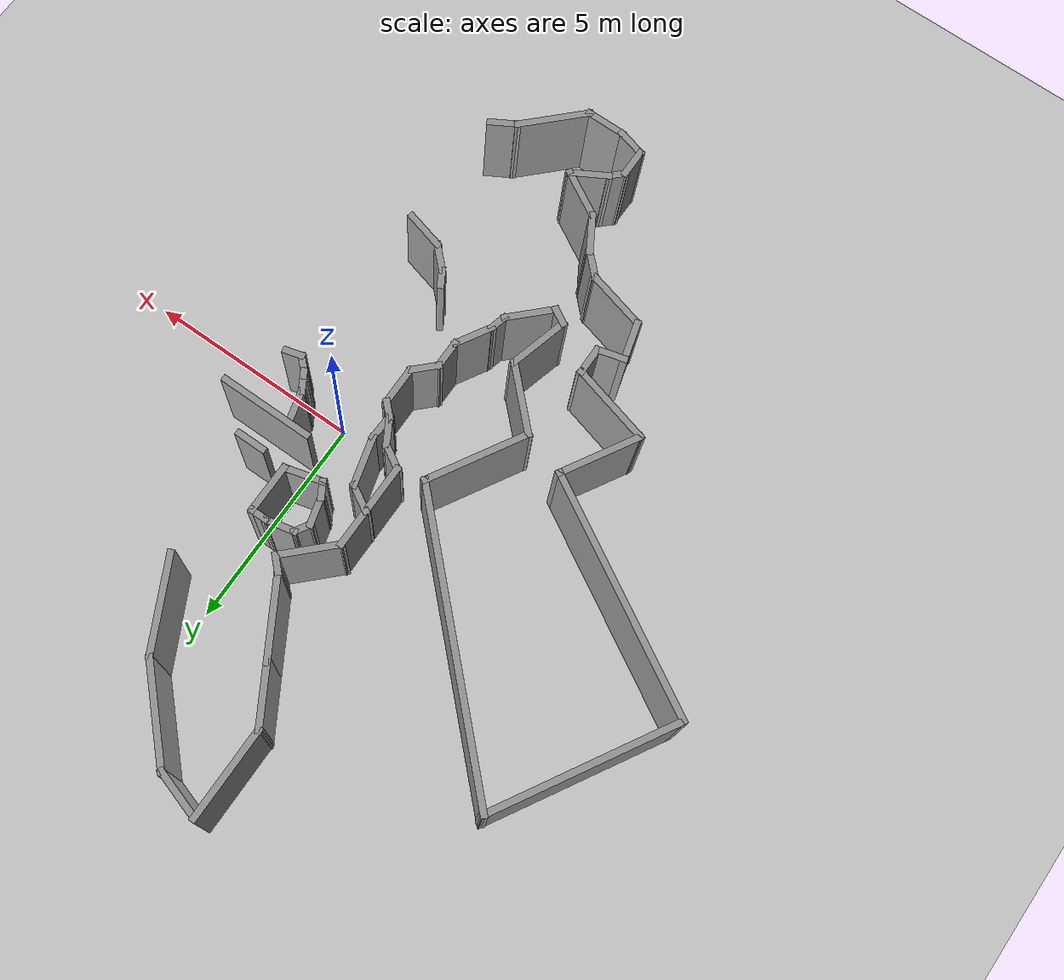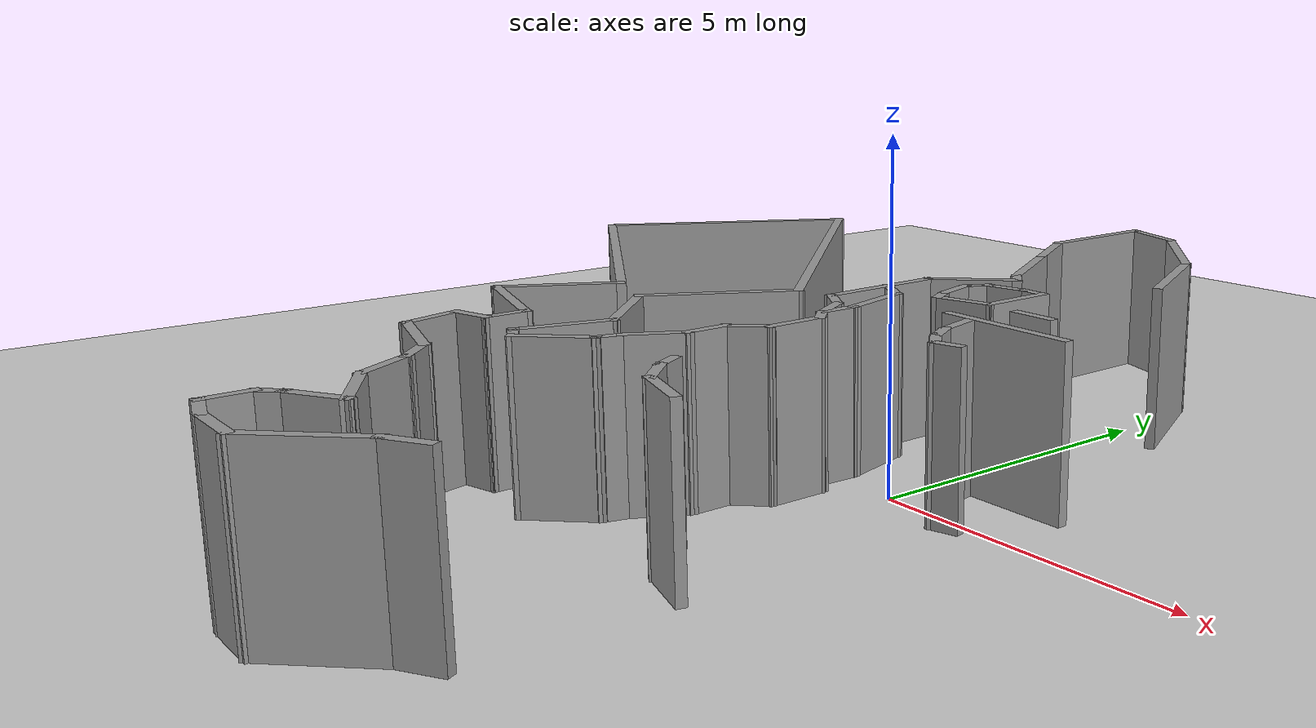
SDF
<sdf version="1.7">
 <world name="default">
  <model name="ground_plane">
   <static>1</static>
   <link name="link">
    <collision name="collision">
     <geometry><plane><normal>0 0 1</normal><size>100 100</size></plane></geometry>
     <surface>
      <contact><collide_bitmask>65535</collide_bitmask></contact>
      <friction><ode><mu>100</mu><mu2>50</mu2></ode></friction>
     </surface>
    </collision>
    <visual name="visual">
     <cast_shadows>0</cast_shadows>
     <geometry><plane><normal>0 0 1</normal><size>100 100</size></plane></geometry>
     <material>
      <script><uri>file://media/materials/scripts/gazebo.material</uri><name>Gazebo/Grey</name></script>
     </material>
    </visual>
   </link>
  </model>
  <model name="pikachu">
   <pose>-0.20309 0.029445 0 0 -0 0</pose>
   <link name="Wall_150">
    <collision name="Wall_150_Collision">
     <geometry><box><size>1.24128 0.15 2.5</size></box></geometry>
     <pose>0 0 1.25 0 -0 0</pose>
    </collision>
    <visual name="Wall_150_Visual">
     <pose>0 0 1.25 0 -0 0</pose>
     <geometry><box><size>1.24128 0.15 2.5</size></box></geometry>
     <material>
      <script><uri>file://media/materials/scripts/gazebo.material</uri><name>Gazebo/Grey</name></script>
      <ambient>1 1 1 1</ambient>
     </material>
     <meta><layer>0</layer></meta>
    </visual>
    <pose>-2.03907 8.34284 0 0 -0 -0.306851</pose>
   </link>
   <link name="Wall_151">
    <collision name="Wall_151_Collision">
     <geometry><box><size>2.4345 0.15 2.5</size></box></geometry>
     <pose>0 0 1.25 0 -0 0</pose>
    </collision>
    <visual name="Wall_151_Visual">
     <pose>0 0 1.25 0 -0 0</pose>
     <geometry><box><size>2.4345 0.15 2.5</size></box></geometry>
     <material>
      <script><uri>file://media/materials/scripts/gazebo.material</uri><name>Gazebo/Grey</name></script>
      <ambient>1 1 1 1</ambient>
     </material>
     <meta><layer>0</layer></meta>
    </visual>
    <pose>-0.729636 7.3595 0 0 -0 -0.808021</pose>
   </link>
   <link name="Wall_152">
    <collision name="Wall_152_Collision">
     <geometry><box><size>2.29967 0.15 2.5</size></box></geometry>
     <pose>0 0 1.25 0 -0 0</pose>
    </collision>
    <visual name="Wall_152_Visual">
     <pose>0 0 1.25 0 -0 0</pose>
     <geometry><box><size>2.29967 0.15 2.5</size></box></geometry>
     <material>
      <script><uri>file://media/materials/scripts/gazebo.material</uri><name>Gazebo/Grey</name></script>
      <ambient>1 1 1 1</ambient>
     </material>
     <meta><layer>0</layer></meta>
    </visual>
    <pose>0.544827 5.5636 0 0 -0 -1.11007</pose>
   </link>
   <link name="Wall_178">
    <collision name="Wall_178_Collision">
     <geometry><box><size>0.75 0.15 2.5</size></box></geometry>
     <pose>0 0 1.25 0 -0 0</pose>
    </collision>
    <visual name="Wall_178_Visual">
     <pose>0 0 1.25 0 -0 0</pose>
     <geometry><box><size>0.75 0.15 2.5</size></box></geometry>
     <material>
      <script><uri>file://media/materials/scripts/gazebo.material</uri><name>Gazebo/Grey</name></script>
      <ambient>1 1 1 1</ambient>
     </material>
     <meta><layer>0</layer></meta>
    </visual>
    <pose>0.984101 -7.21821 0 0 -0 -2.61799</pose>
   </link>
   <link name="Wall_179">
    <collision name="Wall_179_Collision">
     <geometry><box><size>1.75 0.15 2.5</size></box></geometry>
     <pose>0 0 1.25 0 -0 0</pose>
    </collision>
    <visual name="Wall_179_Visual">
     <pose>0 0 1.25 0 -0 0</pose>
     <geometry><box><size>1.75 0.15 2.5</size></box></geometry>
     <material>
      <script><uri>file://media/materials/scripts/gazebo.material</uri><name>Gazebo/Grey</name></script>
      <ambient>1 1 1 1</ambient>
     </material>
     <meta><layer>0</layer></meta>
    </visual>
    <pose>0.158608 -7.93389 0 0 -0 -2.35619</pose>
   </link>
   <link name="Wall_180">
    <collision name="Wall_180_Collision">
     <geometry><box><size>1 0.15 2.5</size></box></geometry>
     <pose>0 0 1.25 0 -0 0</pose>
    </collision>
    <visual name="Wall_180_Visual">
     <pose>0 0 1.25 0 -0 0</pose>
     <geometry><box><size>1 0.15 2.5</size></box></geometry>
     <material>
      <script><uri>file://media/materials/scripts/gazebo.material</uri><name>Gazebo/Grey</name></script>
      <ambient>1 1 1 1</ambient>
     </material>
     <meta><layer>0</layer></meta>
    </visual>
    <pose>-0.832078 -8.49958 0 0 -0 3.14159</pose>
   </link>
   <link name="Wall_181">
    <collision name="Wall_181_Collision">
     <geometry><box><size>0.75 0.15 2.5</size></box></geometry>
     <pose>0 0 1.25 0 -0 0</pose>
    </collision>
    <visual name="Wall_181_Visual">
     <pose>0 0 1.25 0 -0 0</pose>
     <geometry><box><size>0.75 0.15 2.5</size></box></geometry>
     <material>
      <script><uri>file://media/materials/scripts/gazebo.material</uri><name>Gazebo/Grey</name></script>
      <ambient>1 1 1 1</ambient>
     </material>
     <meta><layer>0</layer></meta>
    </visual>
    <pose>-1.54686 -8.42193 0 0 -0 2.87979</pose>
   </link>
   <link name="Wall_182">
    <collision name="Wall_182_Collision">
     <geometry><box><size>0.75 0.15 2.5</size></box></geometry>
     <pose>0 0 1.25 0 -0 0</pose>
    </collision>
    <visual name="Wall_182_Visual">
     <pose>0 0 1.25 0 -0 0</pose>
     <geometry><box><size>0.75 0.15 2.5</size></box></geometry>
     <material>
      <script><uri>file://media/materials/scripts/gazebo.material</uri><name>Gazebo/Grey</name></script>
      <ambient>1 1 1 1</ambient>
     </material>
     <meta><layer>0</layer></meta>
    </visual>
    <pose>-1.83663 -8.04429 0 0 -0 1.5708</pose>
   </link>
   <link name="Wall_183">
    <collision name="Wall_183_Collision">
     <geometry><box><size>0.5 0.15 2.5</size></box></geometry>
     <pose>0 0 1.25 0 -0 0</pose>
    </collision>
    <visual name="Wall_183_Visual">
     <pose>0 0 1.25 0 -0 0</pose>
     <geometry><box><size>0.5 0.15 2.5</size></box></geometry>
     <material>
      <script><uri>file://media/materials/scripts/gazebo.material</uri><name>Gazebo/Grey</name></script>
      <ambient>1 1 1 1</ambient>
     </material>
     <meta><layer>0</layer></meta>
    </visual>
    <pose>-1.71289 -7.62054 0 0 -0 0.785398</pose>
   </link>
   <link name="Wall_184">
    <collision name="Wall_184_Collision">
     <geometry><box><size>1 0.15 2.5</size></box></geometry>
     <pose>0 0 1.25 0 -0 0</pose>
    </collision>
    <visual name="Wall_184_Visual">
     <pose>0 0 1.25 0 -0 0</pose>
     <geometry><box><size>1 0.15 2.5</size></box></geometry>
     <material>
      <script><uri>file://media/materials/scripts/gazebo.material</uri><name>Gazebo/Grey</name></script>
      <ambient>1 1 1 1</ambient>
     </material>
     <meta><layer>0</layer></meta>
    </visual>
    <pose>-1.22108 -7.2843 0 0 -0 0.523599</pose>
   </link>
   <link name="Wall_185">
    <collision name="Wall_185_Collision">
     <geometry><box><size>1.25 0.15 2.5</size></box></geometry>
     <pose>0 0 1.25 0 -0 0</pose>
    </collision>
    <visual name="Wall_185_Visual">
     <pose>0 0 1.25 0 -0 0</pose>
     <geometry><box><size>1.25 0.15 2.5</size></box></geometry>
     <material>
      <script><uri>file://media/materials/scripts/gazebo.material</uri><name>Gazebo/Grey</name></script>
      <ambient>1 1 1 1</ambient>
     </material>
     <meta><layer>0</layer></meta>
    </visual>
    <pose>-1.32934 -6.7968 0 0 -0 2.61799</pose>
   </link>
   <link name="Wall_186">
    <collision name="Wall_186_Collision">
     <geometry><box><size>1 0.15 2.5</size></box></geometry>
     <pose>0 0 1.25 0 -0 0</pose>
    </collision>
    <visual name="Wall_186_Visual">
     <pose>0 0 1.25 0 -0 0</pose>
     <geometry><box><size>1 0.15 2.5</size></box></geometry>
     <material>
      <script><uri>file://media/materials/scripts/gazebo.material</uri><name>Gazebo/Grey</name></script>
      <ambient>1 1 1 1</ambient>
     </material>
     <meta><layer>0</layer></meta>
    </visual>
    <pose>-2.01815 -6.15374 0 0 -0 2.0944</pose>
   </link>
   <link name="Wall_187">
    <collision name="Wall_187_Collision">
     <geometry><box><size>0.75 0.15 2.5</size></box></geometry>
     <pose>0 0 1.25 0 -0 0</pose>
    </collision>
    <visual name="Wall_187_Visual">
     <pose>0 0 1.25 0 -0 0</pose>
     <geometry><box><size>0.75 0.15 2.5</size></box></geometry>
     <material>
      <script><uri>file://media/materials/scripts/gazebo.material</uri><name>Gazebo/Grey</name></script>
      <ambient>1 1 1 1</ambient>
     </material>
     <meta><layer>0</layer></meta>
    </visual>
    <pose>-2.44278 -5.57355 0 0 -0 2.35619</pose>
   </link>
   <link name="Wall_188">
    <collision name="Wall_188_Collision">
     <geometry><box><size>1.5 0.15 2.5</size></box></geometry>
     <pose>0 0 1.25 0 -0 0</pose>
    </collision>
    <visual name="Wall_188_Visual">
     <pose>0 0 1.25 0 -0 0</pose>
     <geometry><box><size>1.5 0.15 2.5</size></box></geometry>
     <material>
      <script><uri>file://media/materials/scripts/gazebo.material</uri><name>Gazebo/Grey</name></script>
      <ambient>1 1 1 1</ambient>
     </material>
     <meta><layer>0</layer></meta>
    </visual>
    <pose>-3.30692 -5.18671 0 0 -0 2.87979</pose>
   </link>
   <link name="Wall_189">
    <collision name="Wall_189_Collision">
     <geometry><box><size>1 0.15 2.5</size></box></geometry>
     <pose>0 0 1.25 0 -0 0</pose>
    </collision>
    <visual name="Wall_189_Visual">
     <pose>0 0 1.25 0 -0 0</pose>
     <geometry><box><size>1 0.15 2.5</size></box></geometry>
     <material>
      <script><uri>file://media/materials/scripts/gazebo.material</uri><name>Gazebo/Grey</name></script>
      <ambient>1 1 1 1</ambient>
     </material>
     <meta><layer>0</layer></meta>
    </visual>
    <pose>-4.06891 -4.60149 0 0 -0 1.8326</pose>
   </link>
   <link name="Wall_190">
    <collision name="Wall_190_Collision">
     <geometry><box><size>0.75 0.15 2.5</size></box></geometry>
     <pose>0 0 1.25 0 -0 0</pose>
    </collision>
    <visual name="Wall_190_Visual">
     <pose>0 0 1.25 0 -0 0</pose>
     <geometry><box><size>0.75 0.15 2.5</size></box></geometry>
     <material>
      <script><uri>file://media/materials/scripts/gazebo.material</uri><name>Gazebo/Grey</name></script>
      <ambient>1 1 1 1</ambient>
     </material>
     <meta><layer>0</layer></meta>
    </visual>
    <pose>-3.88913 -4.11333 0 0 -0 0.261799</pose>
   </link>
   <link name="Wall_191">
    <collision name="Wall_191_Collision">
     <geometry><box><size>0.75 0.15 2.5</size></box></geometry>
     <pose>0 0 1.25 0 -0 0</pose>
    </collision>
    <visual name="Wall_191_Visual">
     <pose>0 0 1.25 0 -0 0</pose>
     <geometry><box><size>0.75 0.15 2.5</size></box></geometry>
     <material>
      <script><uri>file://media/materials/scripts/gazebo.material</uri><name>Gazebo/Grey</name></script>
      <ambient>1 1 1 1</ambient>
     </material>
     <meta><layer>0</layer></meta>
    </visual>
    <pose>-3.59936 -3.73568 0 0 -0 1.5708</pose>
   </link>
   <link name="Wall_192">
    <collision name="Wall_192_Collision">
     <geometry><box><size>2 0.15 2.5</size></box></geometry>
     <pose>0 0 1.25 0 -0 0</pose>
    </collision>
    <visual name="Wall_192_Visual">
     <pose>0 0 1.25 0 -0 0</pose>
     <geometry><box><size>2 0.15 2.5</size></box></geometry>
     <material>
      <script><uri>file://media/materials/scripts/gazebo.material</uri><name>Gazebo/Grey</name></script>
      <ambient>1 1 1 1</ambient>
     </material>
     <meta><layer>0</layer></meta>
    </visual>
    <pose>-4.49284 -3.19627 0 0 -0 2.87979</pose>
   </link>
   <link name="Wall_193">
    <collision name="Wall_193_Collision">
     <geometry><box><size>2 0.15 2.5</size></box></geometry>
     <pose>0 0 1.25 0 -0 0</pose>
    </collision>
    <visual name="Wall_193_Visual">
     <pose>0 0 1.25 0 -0 0</pose>
     <geometry><box><size>2 0.15 2.5</size></box></geometry>
     <material>
      <script><uri>file://media/materials/scripts/gazebo.material</uri><name>Gazebo/Grey</name></script>
      <ambient>1 1 1 1</ambient>
     </material>
     <meta><layer>0</layer></meta>
    </visual>
    <pose>-4.92382 -2.15579 0 0 -0 1.0472</pose>
   </link>
   <link name="Wall_194">
    <collision name="Wall_194_Collision">
     <geometry><box><size>5.75 0.15 2.5</size></box></geometry>
     <pose>0 0 1.25 0 -0 0</pose>
    </collision>
    <visual name="Wall_194_Visual">
     <pose>0 0 1.25 0 -0 0</pose>
     <geometry><box><size>5.75 0.15 2.5</size></box></geometry>
     <material>
      <script><uri>file://media/materials/scripts/gazebo.material</uri><name>Gazebo/Grey</name></script>
      <ambient>1 1 1 1</ambient>
     </material>
     <meta><layer>0</layer></meta>
    </visual>
    <pose>-6.88619 0.045281 0 0 -0 2.61799</pose>
   </link>
   <link name="Wall_195">
    <collision name="Wall_195_Collision">
     <geometry><box><size>4.5 0.15 2.5</size></box></geometry>
     <pose>0 0 1.25 0 -0 0</pose>
    </collision>
    <visual name="Wall_195_Visual">
     <pose>0 0 1.25 0 -0 0</pose>
     <geometry><box><size>4.5 0.15 2.5</size></box></geometry>
     <material>
      <script><uri>file://media/materials/scripts/gazebo.material</uri><name>Gazebo/Grey</name></script>
      <ambient>1 1 1 1</ambient>
     </material>
     <meta><layer>0</layer></meta>
    </visual>
    <pose>-8.22356 3.32889 0 0 -0 1.0472</pose>
   </link>
   <link name="Wall_196">
    <collision name="Wall_196_Collision">
     <geometry><box><size>7 0.15 2.5</size></box></geometry>
     <pose>0 0 1.25 0 -0 0</pose>
    </collision>
    <visual name="Wall_196_Visual">
     <pose>0 0 1.25 0 -0 0</pose>
     <geometry><box><size>7 0.15 2.5</size></box></geometry>
     <material>
      <script><uri>file://media/materials/scripts/gazebo.material</uri><name>Gazebo/Grey</name></script>
      <ambient>1 1 1 1</ambient>
     </material>
     <meta><layer>0</layer></meta>
    </visual>
    <pose>-4.71422 2.79065 0 0 -0 -0.785398</pose>
   </link>
   <link name="Wall_197">
    <collision name="Wall_197_Collision">
     <geometry><box><size>2.5 0.15 2.5</size></box></geometry>
     <pose>0 0 1.25 0 -0 0</pose>
    </collision>
    <visual name="Wall_197_Visual">
     <pose>0 0 1.25 0 -0 0</pose>
     <geometry><box><size>2.5 0.15 2.5</size></box></geometry>
     <material>
      <script><uri>file://media/materials/scripts/gazebo.material</uri><name>Gazebo/Grey</name></script>
      <ambient>1 1 1 1</ambient>
     </material>
     <meta><layer>0</layer></meta>
    </visual>
    <pose>-2.87988 -0.64877 0 0 -0 -2.0944</pose>
   </link>
   <link name="Wall_198">
    <collision name="Wall_198_Collision">
     <geometry><box><size>1.75 0.15 2.5</size></box></geometry>
     <pose>0 0 1.25 0 -0 0</pose>
    </collision>
    <visual name="Wall_198_Visual">
     <pose>0 0 1.25 0 -0 0</pose>
     <geometry><box><size>1.75 0.15 2.5</size></box></geometry>
     <material>
      <script><uri>file://media/materials/scripts/gazebo.material</uri><name>Gazebo/Grey</name></script>
      <ambient>1 1 1 1</ambient>
     </material>
     <meta><layer>0</layer></meta>
    </visual>
    <pose>-2.9017 -2.23204 0 0 -0 -0.785398</pose>
   </link>
   <link name="Wall_199">
    <collision name="Wall_199_Collision">
     <geometry><box><size>1.5 0.15 2.5</size></box></geometry>
     <pose>0 0 1.25 0 -0 0</pose>
    </collision>
    <visual name="Wall_199_Visual">
     <pose>0 0 1.25 0 -0 0</pose>
     <geometry><box><size>1.5 0.15 2.5</size></box></geometry>
     <material>
      <script><uri>file://media/materials/scripts/gazebo.material</uri><name>Gazebo/Grey</name></script>
      <ambient>1 1 1 1</ambient>
     </material>
     <meta><layer>0</layer></meta>
    </visual>
    <pose>-2.51071 -3.44972 0 0 -0 -1.8326</pose>
   </link>
   <link name="Wall_200">
    <collision name="Wall_200_Collision">
     <geometry><box><size>0.5 0.15 2.5</size></box></geometry>
     <pose>0 0 1.25 0 -0 0</pose>
    </collision>
    <visual name="Wall_200_Visual">
     <pose>0 0 1.25 0 -0 0</pose>
     <geometry><box><size>0.5 0.15 2.5</size></box></geometry>
     <material>
      <script><uri>file://media/materials/scripts/gazebo.material</uri><name>Gazebo/Grey</name></script>
      <ambient>1 1 1 1</ambient>
     </material>
     <meta><layer>0</layer></meta>
    </visual>
    <pose>-2.53386 -4.18922 0 0 -0 -0.523599</pose>
   </link>
   <link name="Wall_201">
    <collision name="Wall_201_Collision">
     <geometry><box><size>1.25 0.15 2.5</size></box></geometry>
     <pose>0 0 1.25 0 -0 0</pose>
    </collision>
    <visual name="Wall_201_Visual">
     <pose>0 0 1.25 0 -0 0</pose>
     <geometry><box><size>1.25 0.15 2.5</size></box></geometry>
     <material>
      <script><uri>file://media/materials/scripts/gazebo.material</uri><name>Gazebo/Grey</name></script>
      <ambient>1 1 1 1</ambient>
     </material>
     <meta><layer>0</layer></meta>
    </visual>
    <pose>-1.9934 -3.88781 0 0 -0 0.785398</pose>
   </link>
   <link name="Wall_202">
    <collision name="Wall_202_Collision">
     <geometry><box><size>0.5 0.15 2.5</size></box></geometry>
     <pose>0 0 1.25 0 -0 0</pose>
    </collision>
    <visual name="Wall_202_Visual">
     <pose>0 0 1.25 0 -0 0</pose>
     <geometry><box><size>0.5 0.15 2.5</size></box></geometry>
     <material>
      <script><uri>file://media/materials/scripts/gazebo.material</uri><name>Gazebo/Grey</name></script>
      <ambient>1 1 1 1</ambient>
     </material>
     <meta><layer>0</layer></meta>
    </visual>
    <pose>-1.5592 -3.32987 0 0 -0 1.309</pose>
   </link>
   <link name="Wall_203">
    <collision name="Wall_203_Collision">
     <geometry><box><size>1 0.15 2.5</size></box></geometry>
     <pose>0 0 1.25 0 -0 0</pose>
    </collision>
    <visual name="Wall_203_Visual">
     <pose>0 0 1.25 0 -0 0</pose>
     <geometry><box><size>1 0.15 2.5</size></box></geometry>
     <material>
      <script><uri>file://media/materials/scripts/gazebo.material</uri><name>Gazebo/Grey</name></script>
      <ambient>1 1 1 1</ambient>
     </material>
     <meta><layer>0</layer></meta>
    </visual>
    <pose>-1.3014 -2.79277 0 0 -0 1.0472</pose>
   </link>
   <link name="Wall_204">
    <collision name="Wall_204_Collision">
     <geometry><box><size>0.75 0.15 2.5</size></box></geometry>
     <pose>0 0 1.25 0 -0 0</pose>
    </collision>
    <visual name="Wall_204_Visual">
     <pose>0 0 1.25 0 -0 0</pose>
     <geometry><box><size>0.75 0.15 2.5</size></box></geometry>
     <material>
      <script><uri>file://media/materials/scripts/gazebo.material</uri><name>Gazebo/Grey</name></script>
      <ambient>1 1 1 1</ambient>
     </material>
     <meta><layer>0</layer></meta>
    </visual>
    <pose>-1.0889 -2.12471 0 0 -0 1.5708</pose>
   </link>
   <link name="Wall_205">
    <collision name="Wall_205_Collision">
     <geometry><box><size>0.75 0.15 2.5</size></box></geometry>
     <pose>0 0 1.25 0 -0 0</pose>
    </collision>
    <visual name="Wall_205_Visual">
     <pose>0 0 1.25 0 -0 0</pose>
     <geometry><box><size>0.75 0.15 2.5</size></box></geometry>
     <material>
      <script><uri>file://media/materials/scripts/gazebo.material</uri><name>Gazebo/Grey</name></script>
      <ambient>1 1 1 1</ambient>
     </material>
     <meta><layer>0</layer></meta>
    </visual>
    <pose>-0.87677 -1.61258 0 0 -0 0.785398</pose>
   </link>
   <link name="Wall_206">
    <collision name="Wall_206_Collision">
     <geometry><box><size>1 0.15 2.5</size></box></geometry>
     <pose>0 0 1.25 0 -0 0</pose>
    </collision>
    <visual name="Wall_206_Visual">
     <pose>0 0 1.25 0 -0 0</pose>
     <geometry><box><size>1 0.15 2.5</size></box></geometry>
     <material>
      <script><uri>file://media/materials/scripts/gazebo.material</uri><name>Gazebo/Grey</name></script>
      <ambient>1 1 1 1</ambient>
     </material>
     <meta><layer>0</layer></meta>
    </visual>
    <pose>-0.664638 -0.975443 0 0 -0 1.5708</pose>
   </link>
   <link name="Wall_207">
    <collision name="Wall_207_Collision">
     <geometry><box><size>0.5 0.15 2.5</size></box></geometry>
     <pose>0 0 1.25 0 -0 0</pose>
    </collision>
    <visual name="Wall_207_Visual">
     <pose>0 0 1.25 0 -0 0</pose>
     <geometry><box><size>0.5 0.15 2.5</size></box></geometry>
     <material>
      <script><uri>file://media/materials/scripts/gazebo.material</uri><name>Gazebo/Grey</name></script>
      <ambient>1 1 1 1</ambient>
     </material>
     <meta><layer>0</layer></meta>
    </visual>
    <pose>-0.788382 -0.426699 0 0 -0 2.35619</pose>
   </link>
   <link name="Wall_208">
    <collision name="Wall_208_Collision">
     <geometry><box><size>0.75 0.15 2.5</size></box></geometry>
     <pose>0 0 1.25 0 -0 0</pose>
    </collision>
    <visual name="Wall_208_Visual">
     <pose>0 0 1.25 0 -0 0</pose>
     <geometry><box><size>0.75 0.15 2.5</size></box></geometry>
     <material>
      <script><uri>file://media/materials/scripts/gazebo.material</uri><name>Gazebo/Grey</name></script>
      <ambient>1 1 1 1</ambient>
     </material>
     <meta><layer>0</layer></meta>
    </visual>
    <pose>-1.06212 -0.043148 0 0 -0 2.0944</pose>
   </link>
   <link name="Wall_214">
    <collision name="Wall_214_Collision">
     <geometry><box><size>2.25 0.15 2.5</size></box></geometry>
     <pose>0 0 1.25 0 -0 0</pose>
    </collision>
    <visual name="Wall_214_Visual">
     <pose>0 0 1.25 0 -0 0</pose>
     <geometry><box><size>2.25 0.15 2.5</size></box></geometry>
     <material>
      <script><uri>file://media/materials/scripts/gazebo.material</uri><name>Gazebo/Grey</name></script>
      <ambient>1 1 1 1</ambient>
     </material>
     <meta><layer>0</layer></meta>
    </visual>
    <pose>-2.58621 7.48065 0 0 -0 -1.5708</pose>
   </link>
   <link name="Wall_215">
    <collision name="Wall_215_Collision">
     <geometry><box><size>1.5 0.15 2.5</size></box></geometry>
     <pose>0 0 1.25 0 -0 0</pose>
    </collision>
    <visual name="Wall_215_Visual">
     <pose>0 0 1.25 0 -0 0</pose>
     <geometry><box><size>1.5 0.15 2.5</size></box></geometry>
     <material>
      <script><uri>file://media/materials/scripts/gazebo.material</uri><name>Gazebo/Grey</name></script>
      <ambient>1 1 1 1</ambient>
     </material>
     <meta><layer>0</layer></meta>
    </visual>
    <pose>-2.24871 5.84608 0 0 -0 -1.0472</pose>
   </link>
   <link name="Wall_216">
    <collision name="Wall_216_Collision">
     <geometry><box><size>2 0.15 2.5</size></box></geometry>
     <pose>0 0 1.25 0 -0 0</pose>
    </collision>
    <visual name="Wall_216_Visual">
     <pose>0 0 1.25 0 -0 0</pose>
     <geometry><box><size>2 0.15 2.5</size></box></geometry>
     <material>
      <script><uri>file://media/materials/scripts/gazebo.material</uri><name>Gazebo/Grey</name></script>
      <ambient>1 1 1 1</ambient>
     </material>
     <meta><layer>0</layer></meta>
    </visual>
    <pose>-1.44871 4.46044 0 0 -0 -1.0472</pose>
   </link>
   <link name="Wall_217">
    <collision name="Wall_217_Collision">
     <geometry><box><size>0.5 0.15 2.5</size></box></geometry>
     <pose>0 0 1.25 0 -0 0</pose>
    </collision>
    <visual name="Wall_217_Visual">
     <pose>0 0 1.25 0 -0 0</pose>
     <geometry><box><size>0.5 0.15 2.5</size></box></geometry>
     <material>
      <script><uri>file://media/materials/scripts/gazebo.material</uri><name>Gazebo/Grey</name></script>
      <ambient>1 1 1 1</ambient>
     </material>
     <meta><layer>0</layer></meta>
    </visual>
    <pose>-0.862463 3.53562 0 0 -0 -0.785398</pose>
   </link>
   <link name="Wall_218">
    <collision name="Wall_218_Collision">
     <geometry><box><size>1.5 0.15 2.5</size></box></geometry>
     <pose>0 0 1.25 0 -0 0</pose>
    </collision>
    <visual name="Wall_218_Visual">
     <pose>0 0 1.25 0 -0 0</pose>
     <geometry><box><size>1.5 0.15 2.5</size></box></geometry>
     <material>
      <script><uri>file://media/materials/scripts/gazebo.material</uri><name>Gazebo/Grey</name></script>
      <ambient>1 1 1 1</ambient>
     </material>
     <meta><layer>0</layer></meta>
    </visual>
    <pose>-1.21602 2.93458 0 0 -0 -2.35619</pose>
   </link>
   <link name="Wall_219">
    <collision name="Wall_219_Collision">
     <geometry><box><size>1 0.15 2.5</size></box></geometry>
     <pose>0 0 1.25 0 -0 0</pose>
    </collision>
    <visual name="Wall_219_Visual">
     <pose>0 0 1.25 0 -0 0</pose>
     <geometry><box><size>1 0.15 2.5</size></box></geometry>
     <material>
      <script><uri>file://media/materials/scripts/gazebo.material</uri><name>Gazebo/Grey</name></script>
      <ambient>1 1 1 1</ambient>
     </material>
     <meta><layer>0</layer></meta>
    </visual>
    <pose>-1.69331 2.03228 0 0 -0 -1.5708</pose>
   </link>
   <link name="Wall_220">
    <collision name="Wall_220_Collision">
     <geometry><box><size>1.25 0.15 2.5</size></box></geometry>
     <pose>0 0 1.25 0 -0 0</pose>
    </collision>
    <visual name="Wall_220_Visual">
     <pose>0 0 1.25 0 -0 0</pose>
     <geometry><box><size>1.25 0.15 2.5</size></box></geometry>
     <material>
      <script><uri>file://media/materials/scripts/gazebo.material</uri><name>Gazebo/Grey</name></script>
      <ambient>1 1 1 1</ambient>
     </material>
     <meta><layer>0</layer></meta>
    </visual>
    <pose>-1.69331 1.05728 0 0 -0 -1.5708</pose>
   </link>
   <link name="Wall_221">
    <collision name="Wall_221_Collision">
     <geometry><box><size>0.712143 0.15 2.5</size></box></geometry>
     <pose>0 0 1.25 0 -0 0</pose>
    </collision>
    <visual name="Wall_221_Visual">
     <pose>0 0 1.25 0 -0 0</pose>
     <geometry><box><size>0.712143 0.15 2.5</size></box></geometry>
     <material>
      <script><uri>file://media/materials/scripts/gazebo.material</uri><name>Gazebo/Grey</name></script>
      <ambient>1 1 1 1</ambient>
     </material>
     <meta><layer>0</layer></meta>
    </visual>
    <pose>-1.45272 0.361971 0 0 -0 -0.543334</pose>
   </link>
   <link name="Wall_231">
    <collision name="Wall_231_Collision">
     <geometry><box><size>0.15 0.15 2.5</size></box></geometry>
     <pose>0 0 1.25 0 -0 0</pose>
    </collision>
    <visual name="Wall_231_Visual">
     <pose>0 0 1.25 0 -0 0</pose>
     <geometry><box><size>0.15 0.15 2.5</size></box></geometry>
     <material>
      <script><uri>file://media/materials/scripts/gazebo.material</uri><name>Gazebo/Grey</name></script>
      <ambient>1 1 1 1</ambient>
     </material>
     <meta><layer>0</layer></meta>
    </visual>
    <pose>-0.133514 2.92781 0 0 -0 0</pose>
   </link>
   <link name="Wall_241">
    <collision name="Wall_241_Collision">
     <geometry><box><size>1 0.15 2.5</size></box></geometry>
     <pose>0 0 1.25 0 -0 0</pose>
    </collision>
    <visual name="Wall_241_Visual">
     <pose>0 0 1.25 0 -0 0</pose>
     <geometry><box><size>1 0.15 2.5</size></box></geometry>
     <material>
      <script><uri>file://media/materials/scripts/gazebo.material</uri><name>Gazebo/Grey</name></script>
      <ambient>1 1 1 1</ambient>
     </material>
     <meta><layer>0</layer></meta>
    </visual>
    <pose>0.925849 -4.15225 0 0 -0 2.87979</pose>
   </link>
   <link name="Wall_242">
    <collision name="Wall_242_Collision">
     <geometry><box><size>0.75 0.15 2.5</size></box></geometry>
     <pose>0 0 1.25 0 -0 0</pose>
    </collision>
    <visual name="Wall_242_Visual">
     <pose>0 0 1.25 0 -0 0</pose>
     <geometry><box><size>0.75 0.15 2.5</size></box></geometry>
     <material>
      <script><uri>file://media/materials/scripts/gazebo.material</uri><name>Gazebo/Grey</name></script>
      <ambient>1 1 1 1</ambient>
     </material>
     <meta><layer>0</layer></meta>
    </visual>
    <pose>0.303198 -3.83012 0 0 -0 2.35619</pose>
   </link>
   <link name="Wall_243">
    <collision name="Wall_243_Collision">
     <geometry><box><size>0.5 0.15 2.5</size></box></geometry>
     <pose>0 0 1.25 0 -0 0</pose>
    </collision>
    <visual name="Wall_243_Visual">
     <pose>0 0 1.25 0 -0 0</pose>
     <geometry><box><size>0.5 0.15 2.5</size></box></geometry>
     <material>
      <script><uri>file://media/materials/scripts/gazebo.material</uri><name>Gazebo/Grey</name></script>
      <ambient>1 1 1 1</ambient>
     </material>
     <meta><layer>0</layer></meta>
    </visual>
    <pose>0.003566 -3.46643 0 0 -0 2.0944</pose>
   </link>
   <link name="Wall_255">
    <collision name="Wall_255_Collision">
     <geometry><box><size>0.5 0.15 2.5</size></box></geometry>
     <pose>0 0 1.25 0 -0 0</pose>
    </collision>
    <visual name="Wall_255_Visual">
     <pose>0 0 1.25 0 -0 0</pose>
     <geometry><box><size>0.5 0.15 2.5</size></box></geometry>
     <material>
      <script><uri>file://media/materials/scripts/gazebo.material</uri><name>Gazebo/Grey</name></script>
      <ambient>1 1 1 1</ambient>
     </material>
     <meta><layer>0</layer></meta>
    </visual>
    <pose>0.041486 2.92781 0 0 -0 0</pose>
   </link>
   <link name="Wall_256">
    <collision name="Wall_256_Collision">
     <geometry><box><size>1.25 0.15 2.5</size></box></geometry>
     <pose>0 0 1.25 0 -0 0</pose>
    </collision>
    <visual name="Wall_256_Visual">
     <pose>0 0 1.25 0 -0 0</pose>
     <geometry><box><size>1.25 0.15 2.5</size></box></geometry>
     <material>
      <script><uri>file://media/materials/scripts/gazebo.material</uri><name>Gazebo/Grey</name></script>
      <ambient>1 1 1 1</ambient>
     </material>
     <meta><layer>0</layer></meta>
    </visual>
    <pose>0.216486 2.37781 0 0 -0 -1.5708</pose>
   </link>
   <link name="Wall_257">
    <collision name="Wall_257_Collision">
     <geometry><box><size>1 0.15 2.5</size></box></geometry>
     <pose>0 0 1.25 0 -0 0</pose>
    </collision>
    <visual name="Wall_257_Visual">
     <pose>0 0 1.25 0 -0 0</pose>
     <geometry><box><size>1 0.15 2.5</size></box></geometry>
     <material>
      <script><uri>file://media/materials/scripts/gazebo.material</uri><name>Gazebo/Grey</name></script>
      <ambient>1 1 1 1</ambient>
     </material>
     <meta><layer>0</layer></meta>
    </visual>
    <pose>-0.194033 1.71781 0 0 -0 -2.87979</pose>
   </link>
   <link name="Wall_258">
    <collision name="Wall_258_Collision">
     <geometry><box><size>0.5 0.15 2.5</size></box></geometry>
     <pose>0 0 1.25 0 -0 0</pose>
    </collision>
    <visual name="Wall_258_Visual">
     <pose>0 0 1.25 0 -0 0</pose>
     <geometry><box><size>0.5 0.15 2.5</size></box></geometry>
     <material>
      <script><uri>file://media/materials/scripts/gazebo.material</uri><name>Gazebo/Grey</name></script>
      <ambient>1 1 1 1</ambient>
     </material>
     <meta><layer>0</layer></meta>
    </visual>
    <pose>-0.692051 1.75937 0 0 -0 2.0944</pose>
   </link>
   <link name="Wall_259">
    <collision name="Wall_259_Collision">
     <geometry><box><size>0.75 0.15 2.5</size></box></geometry>
     <pose>0 0 1.25 0 -0 0</pose>
    </collision>
    <visual name="Wall_259_Visual">
     <pose>0 0 1.25 0 -0 0</pose>
     <geometry><box><size>0.75 0.15 2.5</size></box></geometry>
     <material>
      <script><uri>file://media/materials/scripts/gazebo.material</uri><name>Gazebo/Grey</name></script>
      <ambient>1 1 1 1</ambient>
     </material>
     <meta><layer>0</layer></meta>
    </visual>
    <pose>-0.857197 2.2007 0 0 -0 1.8326</pose>
   </link>
   <link name="Wall_260">
    <collision name="Wall_260_Collision">
     <geometry><box><size>0.5 0.15 2.5</size></box></geometry>
     <pose>0 0 1.25 0 -0 0</pose>
    </collision>
    <visual name="Wall_260_Visual">
     <pose>0 0 1.25 0 -0 0</pose>
     <geometry><box><size>0.5 0.15 2.5</size></box></geometry>
     <material>
      <script><uri>file://media/materials/scripts/gazebo.material</uri><name>Gazebo/Grey</name></script>
      <ambient>1 1 1 1</ambient>
     </material>
     <meta><layer>0</layer></meta>
    </visual>
    <pose>-0.847343 2.64203 0 0 -0 1.0472</pose>
   </link>
   <link name="Wall_261">
    <collision name="Wall_261_Collision">
     <geometry><box><size>0.790549 0.15 2.5</size></box></geometry>
     <pose>0 0 1.25 0 -0 0</pose>
    </collision>
    <visual name="Wall_261_Visual">
     <pose>0 0 1.25 0 -0 0</pose>
     <geometry><box><size>0.790549 0.15 2.5</size></box></geometry>
     <material>
      <script><uri>file://media/materials/scripts/gazebo.material</uri><name>Gazebo/Grey</name></script>
      <ambient>1 1 1 1</ambient>
     </material>
     <meta><layer>0</layer></meta>
    </visual>
    <pose>-0.446679 2.8607 0 0 -0 0.211108</pose>
   </link>
   <link name="Wall_273">
    <collision name="Wall_273_Collision">
     <geometry><box><size>0.75 0.15 2.5</size></box></geometry>
     <pose>0 0 1.25 0 -0 0</pose>
    </collision>
    <visual name="Wall_273_Visual">
     <pose>0 0 1.25 0 -0 0</pose>
     <geometry><box><size>0.75 0.15 2.5</size></box></geometry>
     <material>
      <script><uri>file://media/materials/scripts/gazebo.material</uri><name>Gazebo/Grey</name></script>
      <ambient>1 1 1 1</ambient>
     </material>
     <meta><layer>0</layer></meta>
    </visual>
    <pose>1.1145 1.7705 0 0 -0 0</pose>
   </link>
   <link name="Wall_275">
    <collision name="Wall_275_Collision">
     <geometry><box><size>0.75 0.15 2.5</size></box></geometry>
     <pose>0 0 1.25 0 -0 0</pose>
    </collision>
    <visual name="Wall_275_Visual">
     <pose>0 0 1.25 0 -0 0</pose>
     <geometry><box><size>0.75 0.15 2.5</size></box></geometry>
     <material>
      <script><uri>file://media/materials/scripts/gazebo.material</uri><name>Gazebo/Grey</name></script>
      <ambient>1 1 1 1</ambient>
     </material>
     <meta><layer>0</layer></meta>
    </visual>
    <pose>-1.43351 1.45728 0 0 -0 -0.523599</pose>
   </link>
   <link name="Wall_276">
    <collision name="Wall_276_Collision">
     <geometry><box><size>1.25 0.15 2.5</size></box></geometry>
     <pose>0 0 1.25 0 -0 0</pose>
    </collision>
    <visual name="Wall_276_Visual">
     <pose>0 0 1.25 0 -0 0</pose>
     <geometry><box><size>1.25 0.15 2.5</size></box></geometry>
     <material>
      <script><uri>file://media/materials/scripts/gazebo.material</uri><name>Gazebo/Grey</name></script>
      <ambient>1 1 1 1</ambient>
     </material>
     <meta><layer>0</layer></meta>
    </visual>
    <pose>-1.03135 0.776024 0 0 -0 -1.309</pose>
   </link>
   <link name="Wall_277">
    <collision name="Wall_277_Collision">
     <geometry><box><size>0.698208 0.15 2.5</size></box></geometry>
     <pose>0 0 1.25 0 -0 0</pose>
    </collision>
    <visual name="Wall_277_Visual">
     <pose>0 0 1.25 0 -0 0</pose>
     <geometry><box><size>0.698208 0.15 2.5</size></box></geometry>
     <material>
      <script><uri>file://media/materials/scripts/gazebo.material</uri><name>Gazebo/Grey</name></script>
      <ambient>1 1 1 1</ambient>
     </material>
     <meta><layer>0</layer></meta>
    </visual>
    <pose>-0.900562 -0.029096 0 0 -0 -1.613</pose>
   </link>
   <link name="Wall_290">
    <collision name="Wall_290_Collision">
     <geometry><box><size>2.25 0.15 2.5</size></box></geometry>
     <pose>0 0 1.25 0 -0 0</pose>
    </collision>
    <visual name="Wall_290_Visual">
     <pose>0 0 1.25 0 -0 0</pose>
     <geometry><box><size>2.25 0.15 2.5</size></box></geometry>
     <material>
      <script><uri>file://media/materials/scripts/gazebo.material</uri><name>Gazebo/Grey</name></script>
      <ambient>1 1 1 1</ambient>
     </material>
     <meta><layer>0</layer></meta>
    </visual>
    <pose>1.31184 0.99679 0 0 -0 0</pose>
   </link>
   <link name="Wall_293">
    <collision name="Wall_293_Collision">
     <geometry><box><size>0.5 0.15 2.5</size></box></geometry>
     <pose>0 0 1.25 0 -0 0</pose>
    </collision>
    <visual name="Wall_293_Visual">
     <pose>0 0 1.25 0 -0 0</pose>
     <geometry><box><size>0.5 0.15 2.5</size></box></geometry>
     <material>
      <script><uri>file://media/materials/scripts/gazebo.material</uri><name>Gazebo/Grey</name></script>
      <ambient>1 1 1 1</ambient>
     </material>
     <meta><layer>0</layer></meta>
    </visual>
    <pose>1.54855 -0.293805 0 0 -0 -2.87979</pose>
   </link>
   <link name="Wall_294">
    <collision name="Wall_294_Collision">
     <geometry><box><size>0.5 0.15 2.5</size></box></geometry>
     <pose>0 0 1.25 0 -0 0</pose>
    </collision>
    <visual name="Wall_294_Visual">
     <pose>0 0 1.25 0 -0 0</pose>
     <geometry><box><size>0.5 0.15 2.5</size></box></geometry>
     <material>
      <script><uri>file://media/materials/scripts/gazebo.material</uri><name>Gazebo/Grey</name></script>
      <ambient>1 1 1 1</ambient>
     </material>
     <meta><layer>0</layer></meta>
    </visual>
    <pose>1.25576 -0.215354 0 0 -0 2.35619</pose>
   </link>
   <link name="Wall_295">
    <collision name="Wall_295_Collision">
     <geometry><box><size>0.25 0.15 2.5</size></box></geometry>
     <pose>0 0 1.25 0 -0 0</pose>
    </collision>
    <visual name="Wall_295_Visual">
     <pose>0 0 1.25 0 -0 0</pose>
     <geometry><box><size>0.25 0.15 2.5</size></box></geometry>
     <material>
      <script><uri>file://media/materials/scripts/gazebo.material</uri><name>Gazebo/Grey</name></script>
      <ambient>1 1 1 1</ambient>
     </material>
     <meta><layer>0</layer></meta>
    </visual>
    <pose>1.10702 -0.048309 0 0 -0 2.0944</pose>
   </link>
   <link name="Wall_296">
    <collision name="Wall_296_Collision">
     <geometry><box><size>0.5 0.15 2.5</size></box></geometry>
     <pose>0 0 1.25 0 -0 0</pose>
    </collision>
    <visual name="Wall_296_Visual">
     <pose>0 0 1.25 0 -0 0</pose>
     <geometry><box><size>0.5 0.15 2.5</size></box></geometry>
     <material>
      <script><uri>file://media/materials/scripts/gazebo.material</uri><name>Gazebo/Grey</name></script>
      <ambient>1 1 1 1</ambient>
     </material>
     <meta><layer>0</layer></meta>
    </visual>
    <pose>0.994521 0.146546 0 0 -0 2.0944</pose>
   </link>
   <link name="Wall_297">
    <collision name="Wall_297_Collision">
     <geometry><box><size>0.75 0.15 2.5</size></box></geometry>
     <pose>0 0 1.25 0 -0 0</pose>
    </collision>
    <visual name="Wall_297_Visual">
     <pose>0 0 1.25 0 -0 0</pose>
     <geometry><box><size>0.75 0.15 2.5</size></box></geometry>
     <material>
      <script><uri>file://media/materials/scripts/gazebo.material</uri><name>Gazebo/Grey</name></script>
      <ambient>1 1 1 1</ambient>
     </material>
     <meta><layer>0</layer></meta>
    </visual>
    <pose>0.829375 0.587879 0 0 -0 1.8326</pose>
   </link>
   <static>1</static>
  </model>
 </world>
</sdf>
